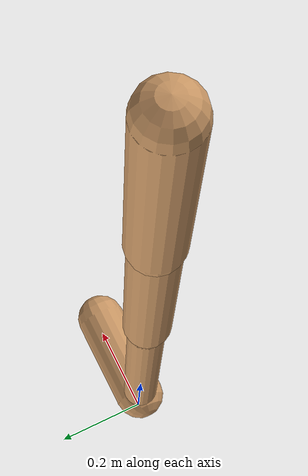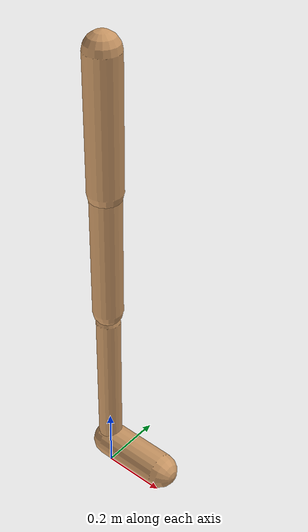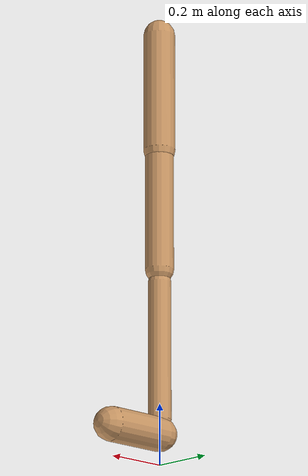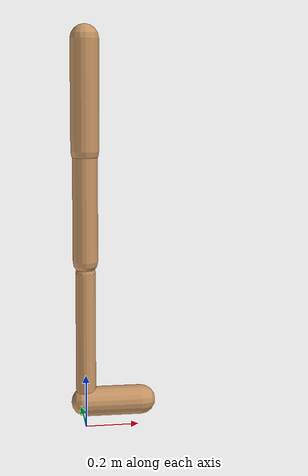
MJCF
<mujoco model="walker2d">
  <compiler angle="degree" coordinate="global" inertiafromgeom="true" />
  <default>
    <joint armature="0.01" damping=".1" limited="true" />
    <geom conaffinity="0" condim="3" contype="1" density="1000" friction="0.8 .1 .1" rgba="0.8 0.6 .4 1" />
  </default>
  <option integrator="RK4" timestep="0.002" />
  <worldbody>

    <body name="torso" pos="0 0 -0.0904740195049083">
      <joint armature="0" axis="1 0 0" damping="0" limited="false" name="ignorex" pos="0 0 0" stiffness="0" type="slide" />
      <joint armature="0" axis="0 0 1" damping="0" limited="false" name="ignorez" pos="0 0 0" ref="1.25" stiffness="0" type="slide" />
      <joint armature="0" axis="0 1 0" damping="0" limited="false" name="ignorey" pos="0 0 0" stiffness="0" type="hinge" />
      <geom fromto="0 0 1.45 0 0 1.05" name="torso_geom" size="0.05214940961981183" type="capsule" />
      <body name="thigh">
        <joint axis="0 -1 0" name="thigh_joint" pos="0 0 1.05" range="-150 0" type="hinge" />
        <geom fromto="0.0 0.0 1.05 0.0 0.0 0.6428561145023249" name="thigh_geom" size="0.04663024973839698" type="capsule" />
        <body name="leg" pos="0.0 0.0 0.04285611450232496">
          <joint axis="0 -1 0" name="leg_joint" pos="0 0 0.6" range="-150 0" type="hinge" />
          <geom fromto="0.0 0.0 0.6 0.0 0.0 0.14761790500258332" name="leg_geom" size="0.037304199790717585" type="capsule" />
          <body name="foot" pos="0.0 0.0 0.04761790500258331">
            <joint axis="0 -1 0" name="foot_joint" pos="0 0 0.1" range="-45 45" type="hinge" />
            <geom fromto="-0.0 0.0 0.1 0.20888311406444904 0.0 0.1" name="foot_geom" size="0.055201649681919526" type="capsule" />
          </body>
        </body>
      </body>

      <body name="thigh_left">
        <joint axis="0 -1 0" name="thigh_left_joint" pos="0 0 1.05" range="-150 0" type="hinge" />
        <geom fromto="0.0 0.0 1.05 0.0 0.0 0.6428561145023249" name="thigh_left_geom" rgba=".7 .3 .6 1" size="0.04663024973839698" type="capsule" />
        <body name="leg_left" pos="0.0 0.0 0.04285611450232496">
          <joint axis="0 -1 0" name="leg_left_joint" pos="0 0 0.6" range="-150 0" type="hinge" />
          <geom fromto="0.0 0.0 0.6 0.0 0.0 0.14761790500258332" name="leg_left_geom" rgba=".7 .3 .6 1" size="0.037304199790717585" type="capsule" />
          <body name="foot_left" pos="0.0 0.0 0.04761790500258331">
            <joint axis="0 -1 0" name="foot_left_joint" pos="0 0 0.1" range="-45 45" type="hinge" />
            <geom fromto="-0.0 0.0 0.1 0.20888311406444904 0.0 0.1" name="foot_left_geom" rgba=".7 .3 .6 1" size="0.055201649681919526" type="capsule" />
          </body>
        </body>
      </body>
    </body>
  </worldbody>
  <actuator>

    <motor ctrllimited="true" ctrlrange="-1.0 1.0" gear="100" joint="thigh_joint" />
    <motor ctrllimited="true" ctrlrange="-1.0 1.0" gear="100" joint="leg_joint" />
    <motor ctrllimited="true" ctrlrange="-1.0 1.0" gear="100" joint="foot_joint" />
    <motor ctrllimited="true" ctrlrange="-1.0 1.0" gear="100" joint="thigh_left_joint" />
    <motor ctrllimited="true" ctrlrange="-1.0 1.0" gear="100" joint="leg_left_joint" />
    <motor ctrllimited="true" ctrlrange="-1.0 1.0" gear="100" joint="foot_left_joint" />

  </actuator>
</mujoco>
